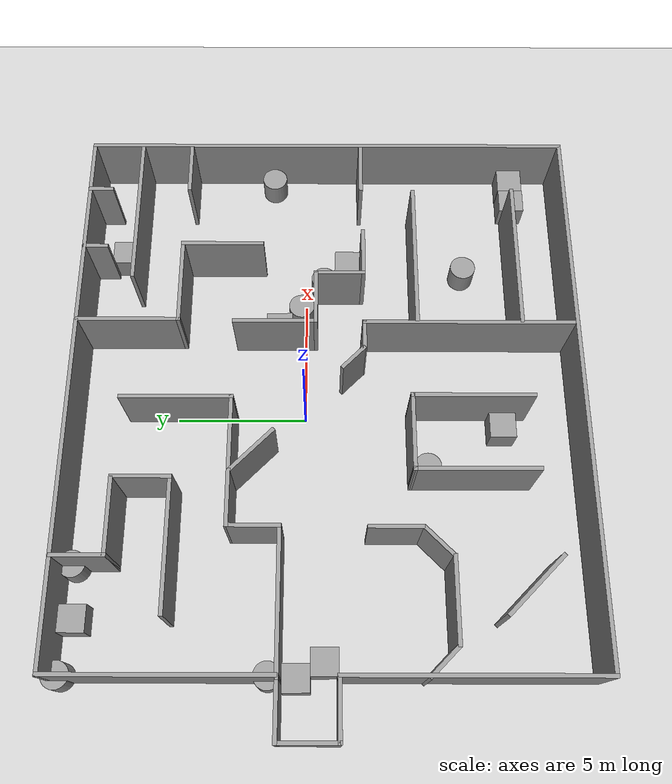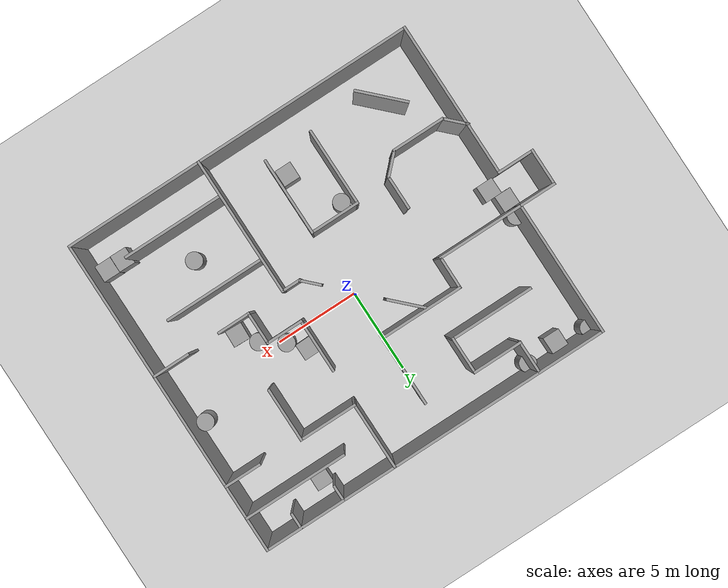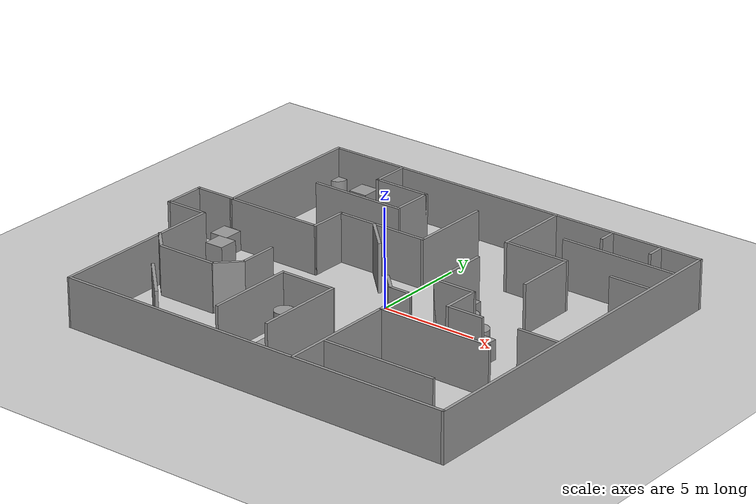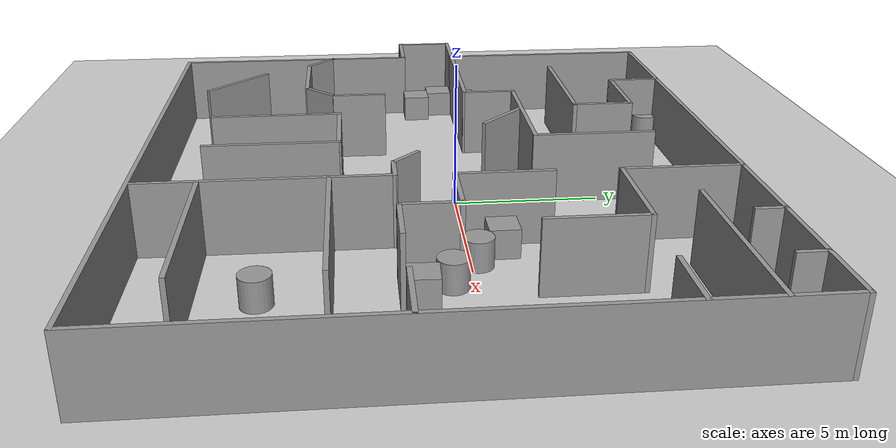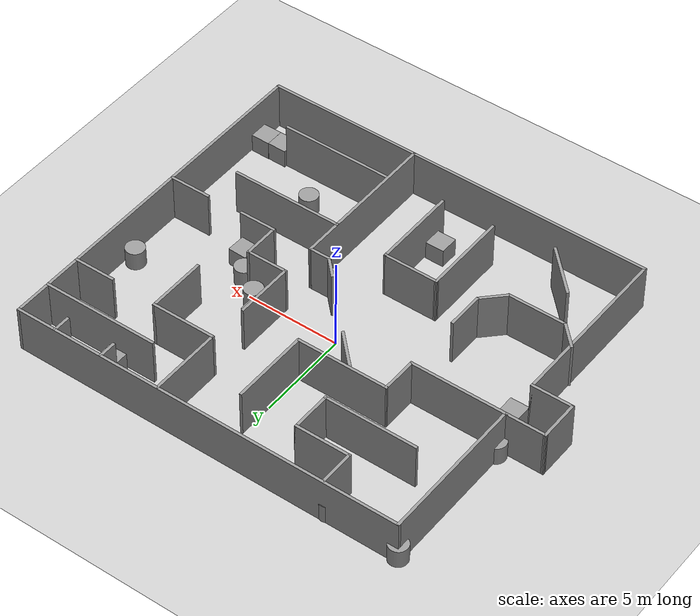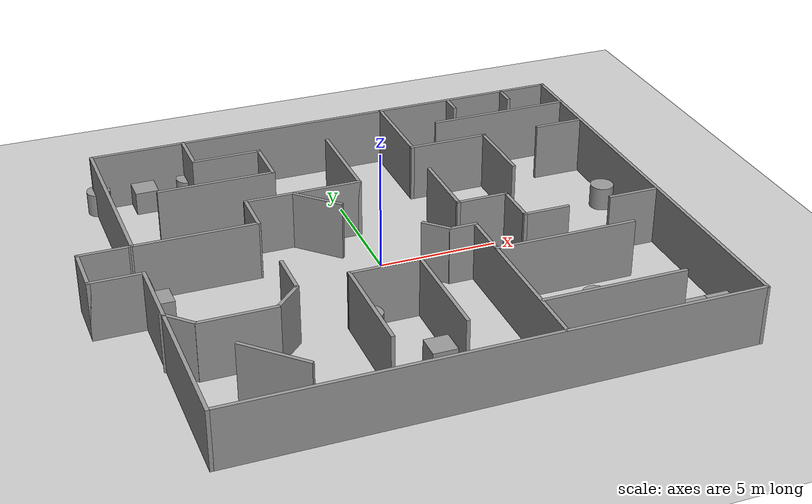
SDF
<sdf version="1.7">
 <world name="default">
  <light name="sun" type="directional">
   <pose>0 0 10 0 -0 0</pose>
   <diffuse>0.8 0.8 0.8 1</diffuse>
   <specular>0.2 0.2 0.2 1</specular>
   <attenuation>
    <range>1000</range>
    <constant>0.9</constant>
    <linear>0.01</linear>
    <quadratic>0.001</quadratic>
   </attenuation>
   <direction>-0.5 0.1 -0.9</direction>
   <spot><inner_angle>0</inner_angle><outer_angle>0</outer_angle><falloff>0</falloff></spot>
  </light>
  <model name="ground_plane">
   <static>1</static>
   <link name="link">
    <collision name="collision">
     <geometry><plane><normal>0 0 1</normal><size>100 100</size></plane></geometry>
     <surface>
      <contact><collide_bitmask>65535</collide_bitmask></contact>
      <friction><ode><mu>100</mu><mu2>50</mu2></ode></friction>
     </surface>
    </collision>
    <visual name="visual">
     <cast_shadows>0</cast_shadows>
     <geometry><plane><normal>0 0 1</normal><size>100 100</size></plane></geometry>
     <material>
      <script><uri>file://media/materials/scripts/gazebo.material</uri><name>Gazebo/Grey</name></script>
     </material>
    </visual>
   </link>
  </model>
  <gravity>0 0 -9.8</gravity>
  <magnetic_field>6e-06 2.3e-05 -4.2e-05</magnetic_field>
  <atmosphere type="adiabatic"/>
  <physics type="ode">
   <max_step_size>0.001</max_step_size>
   <real_time_factor>1</real_time_factor>
   <real_time_update_rate>1000</real_time_update_rate>
  </physics>
  <scene><ambient>0.4 0.4 0.4 1</ambient><background>0.7 0.7 0.7 1</background><shadows>1</shadows></scene>
  <spherical_coordinates>
   <surface_model>EARTH_WGS84</surface_model>
   <latitude_deg>0</latitude_deg>
   <longitude_deg>0</longitude_deg>
   <elevation>0</elevation>
   <heading_deg>0</heading_deg>
  </spherical_coordinates>
  <model name="Maze_2">
   <pose>-0.3438 -0.781152 0 0 -0 0</pose>
   <link name="Wall_1">
    <collision name="Wall_1_Collision">
     <geometry><box><size>2.18537 0.15 2.5</size></box></geometry>
     <pose>0 0 1.25 0 -0 0</pose>
    </collision>
    <visual name="Wall_1_Visual">
     <pose>0 0 1.25 0 -0 0</pose>
     <geometry><box><size>2.18537 0.15 2.5</size></box></geometry>
     <material>
      <script><uri>file://media/materials/scripts/gazebo.material</uri><name>Gazebo/Grey</name></script>
      <ambient>1 1 1 1</ambient>
     </material>
     <meta><layer>0</layer></meta>
    </visual>
    <pose>-10.5822 1.64751 0 0 -0 3.13915</pose>
   </link>
   <link name="Wall_10">
    <collision name="Wall_10_Collision">
     <geometry><box><size>2.25 0.15 2.5</size></box></geometry>
     <pose>1 0 1.25 0 -0 0</pose>
    </collision>
    <visual name="Wall_10_Visual">
     <pose>1 0 1.25 0 -0 0</pose>
     <geometry><box><size>2.25 0.15 2.5</size></box></geometry>
     <material>
      <script><uri>file://media/materials/scripts/gazebo.material</uri><name>Gazebo/Grey</name></script>
      <ambient>1 1 1 1</ambient>
     </material>
     <meta><layer>0</layer></meta>
    </visual>
    <pose>-0.957564 1.99966 0 0 -0 2.35619</pose>
   </link>
   <link name="Wall_12">
    <collision name="Wall_12_Collision">
     <geometry><box><size>5 0.15 2.5</size></box></geometry>
     <pose>0 0 1.25 0 -0 0</pose>
    </collision>
    <visual name="Wall_12_Visual">
     <pose>0 0 1.25 0 -0 0</pose>
     <geometry><box><size>5 0.15 2.5</size></box></geometry>
     <material>
      <script><uri>file://media/materials/scripts/gazebo.material</uri><name>Gazebo/Grey</name></script>
      <ambient>1 1 1 1</ambient>
     </material>
     <meta><layer>0</layer></meta>
    </visual>
    <pose>-2.02915 3.51249 0 0 -0 0</pose>
   </link>
   <link name="Wall_14">
    <collision name="Wall_14_Collision">
     <geometry><box><size>2.01749 0.15 2.5</size></box></geometry>
     <pose>0 0 1.25 0 -0 0</pose>
    </collision>
    <visual name="Wall_14_Visual">
     <pose>0 0 1.25 0 -0 0</pose>
     <geometry><box><size>2.01749 0.15 2.5</size></box></geometry>
     <material>
      <script><uri>file://media/materials/scripts/gazebo.material</uri><name>Gazebo/Grey</name></script>
      <ambient>1 1 1 1</ambient>
     </material>
     <meta><layer>0</layer></meta>
    </visual>
    <pose>-4.45934 2.57876 0 0 -0 -1.57636</pose>
   </link>
   <link name="Wall_18">
    <collision name="Wall_18_Collision">
     <geometry><box><size>5.25 0.15 2.5</size></box></geometry>
     <pose>0 0 1.25 0 -0 0</pose>
    </collision>
    <visual name="Wall_18_Visual">
     <pose>0 0 1.25 0 -0 0</pose>
     <geometry><box><size>5.25 0.15 2.5</size></box></geometry>
     <material>
      <script><uri>file://media/materials/scripts/gazebo.material</uri><name>Gazebo/Grey</name></script>
      <ambient>1 1 1 1</ambient>
     </material>
     <meta><layer>0</layer></meta>
    </visual>
    <pose>-7.01454 1.64503 0 0 -0 3.14159</pose>
   </link>
   <link name="Wall_2">
    <collision name="Wall_2_Collision">
     <geometry><box><size>2.25 0.15 2.5</size></box></geometry>
     <pose>0 0 1.25 0 -0 0</pose>
    </collision>
    <visual name="Wall_2_Visual">
     <pose>0 0 1.25 0 -0 0</pose>
     <geometry><box><size>2.25 0.15 2.5</size></box></geometry>
     <material>
      <script><uri>file://media/materials/scripts/gazebo.material</uri><name>Gazebo/Grey</name></script>
      <ambient>1 1 1 1</ambient>
     </material>
     <meta><layer>0</layer></meta>
    </visual>
    <pose>-11.5999 0.6 0 0 -0 -1.5708</pose>
   </link>
   <link name="Wall_20">
    <collision name="Wall_20_Collision">
     <geometry><box><size>8 0.15 2.5</size></box></geometry>
     <pose>0 0 1.25 0 -0 0</pose>
    </collision>
    <visual name="Wall_20_Visual">
     <pose>0 0 1.25 0 -0 0</pose>
     <geometry><box><size>8 0.15 2.5</size></box></geometry>
     <material>
      <script><uri>file://media/materials/scripts/gazebo.material</uri><name>Gazebo/Grey</name></script>
      <ambient>1 1 1 1</ambient>
     </material>
     <meta><layer>0</layer></meta>
    </visual>
    <pose>-9.49991 5.625 0 0 -0 -1.5708</pose>
   </link>
   <link name="Wall_22">
    <collision name="Wall_22_Collision">
     <geometry><box><size>1.25 0.15 2.5</size></box></geometry>
     <pose>0 0 1.25 0 -0 0</pose>
    </collision>
    <visual name="Wall_22_Visual">
     <pose>0 0 1.25 0 -0 0</pose>
     <geometry><box><size>1.25 0.15 2.5</size></box></geometry>
     <material>
      <script><uri>file://media/materials/scripts/gazebo.material</uri><name>Gazebo/Grey</name></script>
      <ambient>1 1 1 1</ambient>
     </material>
     <meta><layer>0</layer></meta>
    </visual>
    <pose>1.99675 -1.01284 0 0 -0 -0.785398</pose>
   </link>
   <link name="Wall_24">
    <collision name="Wall_24_Collision">
     <geometry><box><size>1.19529 0.15 2.5</size></box></geometry>
     <pose>0 0 1.25 0 -0 0</pose>
    </collision>
    <visual name="Wall_24_Visual">
     <pose>0 0 1.25 0 -0 0</pose>
     <geometry><box><size>1.19529 0.15 2.5</size></box></geometry>
     <material>
      <script><uri>file://media/materials/scripts/gazebo.material</uri><name>Gazebo/Grey</name></script>
      <ambient>1 1 1 1</ambient>
     </material>
     <meta><layer>0</layer></meta>
    </visual>
    <pose>2.94977 -1.43978 0 0 -0 -3.13794</pose>
   </link>
   <link name="Wall_26">
    <collision name="Wall_26_Collision">
     <geometry><box><size>8.25 0.15 2.5</size></box></geometry>
     <pose>0 0 1.25 0 -0 0</pose>
    </collision>
    <visual name="Wall_26_Visual">
     <pose>0 0 1.25 0 -0 0</pose>
     <geometry><box><size>8.25 0.15 2.5</size></box></geometry>
     <material>
      <script><uri>file://media/materials/scripts/gazebo.material</uri><name>Gazebo/Grey</name></script>
      <ambient>1 1 1 1</ambient>
     </material>
     <meta><layer>0</layer></meta>
    </visual>
    <pose>3.47228 -5.48787 0 0 -0 -1.5708</pose>
   </link>
   <link name="Wall_28">
    <collision name="Wall_28_Collision">
     <geometry><box><size>6 0.15 2.5</size></box></geometry>
     <pose>0 0 1.25 0 -0 0</pose>
    </collision>
    <visual name="Wall_28_Visual">
     <pose>0 0 1.25 0 -0 0</pose>
     <geometry><box><size>6 0.15 2.5</size></box></geometry>
     <material>
      <script><uri>file://media/materials/scripts/gazebo.material</uri><name>Gazebo/Grey</name></script>
      <ambient>1 1 1 1</ambient>
     </material>
     <meta><layer>0</layer></meta>
    </visual>
    <pose>6.42548 -3.4608 0 0 -0 0</pose>
   </link>
   <link name="Wall_3">
    <collision name="Wall_3_Collision">
     <geometry><box><size>2.25 0.15 2.5</size></box></geometry>
     <pose>0 0 1.25 0 -0 0</pose>
    </collision>
    <visual name="Wall_3_Visual">
     <pose>0 0 1.25 0 -0 0</pose>
     <geometry><box><size>2.25 0.15 2.5</size></box></geometry>
     <material>
      <script><uri>file://media/materials/scripts/gazebo.material</uri><name>Gazebo/Grey</name></script>
      <ambient>1 1 1 1</ambient>
     </material>
     <meta><layer>0</layer></meta>
    </visual>
    <pose>-10.5499 -0.45 0 0 -0 0</pose>
   </link>
   <link name="Wall_30">
    <collision name="Wall_30_Collision">
     <geometry><box><size>6 0.15 2.5</size></box></geometry>
     <pose>0 0 1.25 0 -0 0</pose>
    </collision>
    <visual name="Wall_30_Visual">
     <pose>0 0 1.25 0 -0 0</pose>
     <geometry><box><size>6 0.15 2.5</size></box></geometry>
     <material>
      <script><uri>file://media/materials/scripts/gazebo.material</uri><name>Gazebo/Grey</name></script>
      <ambient>1 1 1 1</ambient>
     </material>
     <meta><layer>0</layer></meta>
    </visual>
    <pose>6.47548 -7.4508 0 0 -0 0</pose>
   </link>
   <link name="Wall_32">
    <collision name="Wall_32_Collision">
     <geometry><box><size>4.64174 0.15 2.5</size></box></geometry>
     <pose>0 0 1.25 0 -0 0</pose>
    </collision>
    <visual name="Wall_32_Visual">
     <pose>0 0 1.25 0 -0 0</pose>
     <geometry><box><size>4.64174 0.15 2.5</size></box></geometry>
     <material>
      <script><uri>file://media/materials/scripts/gazebo.material</uri><name>Gazebo/Grey</name></script>
      <ambient>1 1 1 1</ambient>
     </material>
     <meta><layer>0</layer></meta>
    </visual>
    <pose>0.48137 -5.42485 0 0 -0 -1.56974</pose>
   </link>
   <link name="Wall_34">
    <collision name="Wall_34_Collision">
     <geometry><box><size>3 0.15 2.5</size></box></geometry>
     <pose>0 0 1.25 0 -0 0</pose>
    </collision>
    <visual name="Wall_34_Visual">
     <pose>0 0 1.25 0 -0 0</pose>
     <geometry><box><size>3 0.15 2.5</size></box></geometry>
     <material>
      <script><uri>file://media/materials/scripts/gazebo.material</uri><name>Gazebo/Grey</name></script>
      <ambient>1 1 1 1</ambient>
     </material>
     <meta><layer>0</layer></meta>
    </visual>
    <pose>-0.946011 -3.17898 0 0 -0 3.14159</pose>
   </link>
   <link name="Wall_36">
    <collision name="Wall_36_Collision">
     <geometry><box><size>4.64174 0.15 2.5</size></box></geometry>
     <pose>0 0 1.25 0 -0 0</pose>
    </collision>
    <visual name="Wall_36_Visual">
     <pose>0 0 1.25 0 -0 0</pose>
     <geometry><box><size>4.64174 0.15 2.5</size></box></geometry>
     <material>
      <script><uri>file://media/materials/scripts/gazebo.material</uri><name>Gazebo/Grey</name></script>
      <ambient>1 1 1 1</ambient>
     </material>
     <meta><layer>0</layer></meta>
    </visual>
    <pose>-2.36863 -5.42485 0 0 -0 -1.56974</pose>
   </link>
   <link name="Wall_38">
    <collision name="Wall_38_Collision">
     <geometry><box><size>4.25 0.15 2.5</size></box></geometry>
     <pose>0 0 1.25 0 -0 0</pose>
    </collision>
    <visual name="Wall_38_Visual">
     <pose>0 0 1.25 0 -0 0</pose>
     <geometry><box><size>4.25 0.15 2.5</size></box></geometry>
     <material>
      <script><uri>file://media/materials/scripts/gazebo.material</uri><name>Gazebo/Grey</name></script>
      <ambient>1 1 1 1</ambient>
     </material>
     <meta><layer>0</layer></meta>
    </visual>
    <pose>0.395855 5.56249 0 0 -0 1.5708</pose>
   </link>
   <link name="Wall_4">
    <collision name="Wall_4_Collision">
     <geometry><box><size>9.25 0.15 2.5</size></box></geometry>
     <pose>0 0 1.25 0 -0 0</pose>
    </collision>
    <visual name="Wall_4_Visual">
     <pose>0 0 1.25 0 -0 0</pose>
     <geometry><box><size>9.25 0.15 2.5</size></box></geometry>
     <material>
      <script><uri>file://media/materials/scripts/gazebo.material</uri><name>Gazebo/Grey</name></script>
      <ambient>1 1 1 1</ambient>
     </material>
     <meta><layer>0</layer></meta>
    </visual>
    <pose>-9.49991 -5 0 0 -0 -1.5708</pose>
   </link>
   <link name="Wall_43">
    <collision name="Wall_43_Collision">
     <geometry><box><size>1.5 0.15 2.5</size></box></geometry>
     <pose>0 0 1.25 0 -0 0</pose>
    </collision>
    <visual name="Wall_43_Visual">
     <pose>0 0 1.25 0 -0 0</pose>
     <geometry><box><size>1.5 0.15 2.5</size></box></geometry>
     <material>
      <script><uri>file://media/materials/scripts/gazebo.material</uri><name>Gazebo/Grey</name></script>
      <ambient>1 1 1 1</ambient>
     </material>
     <meta><layer>0</layer></meta>
    </visual>
    <pose>-4.98733 -3.9113 0 0 -0 0.785398</pose>
   </link>
   <link name="Wall_45">
    <collision name="Wall_45_Collision">
     <geometry><box><size>3.15541 0.15 2.5</size></box></geometry>
     <pose>0 0 1.25 0 -0 0</pose>
    </collision>
    <visual name="Wall_45_Visual">
     <pose>0 0 1.25 0 -0 0</pose>
     <geometry><box><size>3.15541 0.15 2.5</size></box></geometry>
     <material>
      <script><uri>file://media/materials/scripts/gazebo.material</uri><name>Gazebo/Grey</name></script>
      <ambient>1 1 1 1</ambient>
     </material>
     <meta><layer>0</layer></meta>
    </visual>
    <pose>-7.02192 -4.4463 0 0 -0 -3.14006</pose>
   </link>
   <link name="Wall_47">
    <collision name="Wall_47_Collision">
     <geometry><box><size>1.5 0.15 2.5</size></box></geometry>
     <pose>0 0 1.25 0 -0 0</pose>
    </collision>
    <visual name="Wall_47_Visual">
     <pose>0 0 1.25 0 -0 0</pose>
     <geometry><box><size>1.5 0.15 2.5</size></box></geometry>
     <material>
      <script><uri>file://media/materials/scripts/gazebo.material</uri><name>Gazebo/Grey</name></script>
      <ambient>1 1 1 1</ambient>
     </material>
     <meta><layer>0</layer></meta>
    </visual>
    <pose>-9.0687 -3.93452 0 0 -0 -0.785398</pose>
   </link>
   <link name="Wall_49">
    <collision name="Wall_49_Collision">
     <geometry><box><size>2 0.15 2.5</size></box></geometry>
     <pose>0 0 1.25 0 -0 0</pose>
    </collision>
    <visual name="Wall_49_Visual">
     <pose>0 0 1.25 0 -0 0</pose>
     <geometry><box><size>2 0.15 2.5</size></box></geometry>
     <material>
      <script><uri>file://media/materials/scripts/gazebo.material</uri><name>Gazebo/Grey</name></script>
      <ambient>1 1 1 1</ambient>
     </material>
     <meta><layer>0</layer></meta>
    </visual>
    <pose>-4.48721 -2.43429 0 0 -0 -1.5708</pose>
   </link>
   <link name="Wall_5">
    <collision name="Wall_5_Collision">
     <geometry><box><size>21.25 0.15 2.5</size></box></geometry>
     <pose>0 0 1.25 0 -0 0</pose>
    </collision>
    <visual name="Wall_5_Visual">
     <pose>0 0 1.25 0 -0 0</pose>
     <geometry><box><size>21.25 0.15 2.5</size></box></geometry>
     <material>
      <script><uri>file://media/materials/scripts/gazebo.material</uri><name>Gazebo/Grey</name></script>
      <ambient>1 1 1 1</ambient>
     </material>
     <meta><layer>0</layer></meta>
    </visual>
    <pose>1.05009 -9.55 0 0 -0 0</pose>
   </link>
   <link name="Wall_51">
    <collision name="Wall_51_Collision">
     <geometry><box><size>2.25 0.15 2.5</size></box></geometry>
     <pose>0 0 1.25 0 -0 0</pose>
    </collision>
    <visual name="Wall_51_Visual">
     <pose>0 0 1.25 0 -0 0</pose>
     <geometry><box><size>2.25 0.15 2.5</size></box></geometry>
     <material>
      <script><uri>file://media/materials/scripts/gazebo.material</uri><name>Gazebo/Grey</name></script>
      <ambient>1 1 1 1</ambient>
     </material>
     <meta><layer>0</layer></meta>
    </visual>
    <pose>10.5314 -1.37081 0 0 -0 3.14159</pose>
   </link>
   <link name="Wall_53">
    <collision name="Wall_53_Collision">
     <geometry><box><size>2 0.15 2.5</size></box></geometry>
     <pose>0 0 1.25 0 -0 0</pose>
    </collision>
    <visual name="Wall_53_Visual">
     <pose>0 0 1.25 0 -0 0</pose>
     <geometry><box><size>2 0.15 2.5</size></box></geometry>
     <material>
      <script><uri>file://media/materials/scripts/gazebo.material</uri><name>Gazebo/Grey</name></script>
      <ambient>1 1 1 1</ambient>
     </material>
     <meta><layer>0</layer></meta>
    </visual>
    <pose>6.55008 -1.43164 0 0 -0 3.14159</pose>
   </link>
   <link name="Wall_54">
    <collision name="Wall_54_Collision">
     <geometry><box><size>2 0.15 2.5</size></box></geometry>
     <pose>0 0 1.25 0 -0 0</pose>
    </collision>
    <visual name="Wall_54_Visual">
     <pose>0 0 1.25 0 -0 0</pose>
     <geometry><box><size>2 0.15 2.5</size></box></geometry>
     <material>
      <script><uri>file://media/materials/scripts/gazebo.material</uri><name>Gazebo/Grey</name></script>
      <ambient>1 1 1 1</ambient>
     </material>
     <meta><layer>0</layer></meta>
    </visual>
    <pose>5.62508 -0.506641 0 0 -0 1.5708</pose>
   </link>
   <link name="Wall_56">
    <collision name="Wall_56_Collision">
     <geometry><box><size>2.25 0.15 2.5</size></box></geometry>
     <pose>0 0 1.25 0 -0 0</pose>
    </collision>
    <visual name="Wall_56_Visual">
     <pose>0 0 1.25 0 -0 0</pose>
     <geometry><box><size>2.25 0.15 2.5</size></box></geometry>
     <material>
      <script><uri>file://media/materials/scripts/gazebo.material</uri><name>Gazebo/Grey</name></script>
      <ambient>1 1 1 1</ambient>
     </material>
     <meta><layer>0</layer></meta>
    </visual>
    <pose>4.57508 0.418359 0 0 -0 3.14159</pose>
   </link>
   <link name="Wall_58">
    <collision name="Wall_58_Collision">
     <geometry><box><size>3.25 0.15 2.5</size></box></geometry>
     <pose>0 0 1.25 0 -0 0</pose>
    </collision>
    <visual name="Wall_58_Visual">
     <pose>0 0 1.25 0 -0 0</pose>
     <geometry><box><size>3.25 0.15 2.5</size></box></geometry>
     <material>
      <script><uri>file://media/materials/scripts/gazebo.material</uri><name>Gazebo/Grey</name></script>
      <ambient>1 1 1 1</ambient>
     </material>
     <meta><layer>0</layer></meta>
    </visual>
    <pose>3.52508 1.96836 0 0 -0 1.5708</pose>
   </link>
   <link name="Wall_60">
    <collision name="Wall_60_Collision">
     <geometry><box><size>3.25 0.15 2.5</size></box></geometry>
     <pose>0 0 1.25 0 -0 0</pose>
    </collision>
    <visual name="Wall_60_Visual">
     <pose>0 0 1.25 0 -0 0</pose>
     <geometry><box><size>3.25 0.15 2.5</size></box></geometry>
     <material>
      <script><uri>file://media/materials/scripts/gazebo.material</uri><name>Gazebo/Grey</name></script>
      <ambient>1 1 1 1</ambient>
     </material>
     <meta><layer>0</layer></meta>
    </visual>
    <pose>6.92938 4.10641 0 0 -0 1.5708</pose>
   </link>
   <link name="Wall_61">
    <collision name="Wall_61_Collision">
     <geometry><box><size>3.5 0.15 2.5</size></box></geometry>
     <pose>0 0 1.25 0 -0 0</pose>
    </collision>
    <visual name="Wall_61_Visual">
     <pose>0 0 1.25 0 -0 0</pose>
     <geometry><box><size>3.5 0.15 2.5</size></box></geometry>
     <material>
      <script><uri>file://media/materials/scripts/gazebo.material</uri><name>Gazebo/Grey</name></script>
      <ambient>1 1 1 1</ambient>
     </material>
     <meta><layer>0</layer></meta>
    </visual>
    <pose>5.25438 5.65641 0 0 -0 3.14159</pose>
   </link>
   <link name="Wall_62">
    <collision name="Wall_62_Collision">
     <geometry><box><size>4 0.15 2.5</size></box></geometry>
     <pose>0 0 1.25 0 -0 0</pose>
    </collision>
    <visual name="Wall_62_Visual">
     <pose>0 0 1.25 0 -0 0</pose>
     <geometry><box><size>4 0.15 2.5</size></box></geometry>
     <material>
      <script><uri>file://media/materials/scripts/gazebo.material</uri><name>Gazebo/Grey</name></script>
      <ambient>1 1 1 1</ambient>
     </material>
     <meta><layer>0</layer></meta>
    </visual>
    <pose>3.57938 7.58141 0 0 -0 1.5708</pose>
   </link>
   <link name="Wall_64">
    <collision name="Wall_64_Collision">
     <geometry><box><size>2.25 0.15 2.5</size></box></geometry>
     <pose>0 0 1.25 0 -0 0</pose>
    </collision>
    <visual name="Wall_64_Visual">
     <pose>0 0 1.25 0 -0 0</pose>
     <geometry><box><size>2.25 0.15 2.5</size></box></geometry>
     <material>
      <script><uri>file://media/materials/scripts/gazebo.material</uri><name>Gazebo/Grey</name></script>
      <ambient>1 1 1 1</ambient>
     </material>
     <meta><layer>0</layer></meta>
    </visual>
    <pose>10.5479 5.54788 0 0 -0 3.14159</pose>
   </link>
   <link name="Wall_66">
    <collision name="Wall_66_Collision">
     <geometry><box><size>6.25 0.15 2.5</size></box></geometry>
     <pose>0 0 1.25 0 -0 0</pose>
    </collision>
    <visual name="Wall_66_Visual">
     <pose>0 0 1.25 0 -0 0</pose>
     <geometry><box><size>6.25 0.15 2.5</size></box></geometry>
     <material>
      <script><uri>file://media/materials/scripts/gazebo.material</uri><name>Gazebo/Grey</name></script>
      <ambient>1 1 1 1</ambient>
     </material>
     <meta><layer>0</layer></meta>
    </visual>
    <pose>8.54789 7.5544 0 0 -0 3.14159</pose>
   </link>
   <link name="Wall_68">
    <collision name="Wall_68_Collision">
     <geometry><box><size>1 0.15 2.5</size></box></geometry>
     <pose>0 0 1.25 0 -0 0</pose>
    </collision>
    <visual name="Wall_68_Visual">
     <pose>0 0 1.25 0 -0 0</pose>
     <geometry><box><size>1 0.15 2.5</size></box></geometry>
     <material>
      <script><uri>file://media/materials/scripts/gazebo.material</uri><name>Gazebo/Grey</name></script>
      <ambient>1 1 1 1</ambient>
     </material>
     <meta><layer>0</layer></meta>
    </visual>
    <pose>6.80789 9.1094 0 0 -0 -1.5708</pose>
   </link>
   <link name="Wall_7">
    <collision name="Wall_7_Collision">
     <geometry><box><size>19.25 0.15 2.5</size></box></geometry>
     <pose>0 0 1.25 0 -0 0</pose>
    </collision>
    <visual name="Wall_7_Visual">
     <pose>0 0 1.25 0 -0 0</pose>
     <geometry><box><size>19.25 0.15 2.5</size></box></geometry>
     <material>
      <script><uri>file://media/materials/scripts/gazebo.material</uri><name>Gazebo/Grey</name></script>
      <ambient>1 1 1 1</ambient>
     </material>
     <meta><layer>0</layer></meta>
    </visual>
    <pose>11.6001 0 0 0 -0 1.5708</pose>
   </link>
   <link name="Wall_70">
    <collision name="Wall_70_Collision">
     <geometry><box><size>1 0.15 2.5</size></box></geometry>
     <pose>0 0 1.25 0 -0 0</pose>
    </collision>
    <visual name="Wall_70_Visual">
     <pose>0 0 1.25 0 -0 0</pose>
     <geometry><box><size>1 0.15 2.5</size></box></geometry>
     <material>
      <script><uri>file://media/materials/scripts/gazebo.material</uri><name>Gazebo/Grey</name></script>
      <ambient>1 1 1 1</ambient>
     </material>
     <meta><layer>0</layer></meta>
    </visual>
    <pose>9.47789 9.1194 0 0 -0 -1.5708</pose>
   </link>
   <link name="Wall_72">
    <collision name="Wall_72_Collision">
     <geometry><box><size>3 0.15 2.5</size></box></geometry>
     <pose>0 0 1.25 0 -0 0</pose>
    </collision>
    <visual name="Wall_72_Visual">
     <pose>0 0 1.25 0 -0 0</pose>
     <geometry><box><size>3 0.15 2.5</size></box></geometry>
     <material>
      <script><uri>file://media/materials/scripts/gazebo.material</uri><name>Gazebo/Grey</name></script>
      <ambient>1 1 1 1</ambient>
     </material>
     <meta><layer>0</layer></meta>
    </visual>
    <pose>-6.50601 -7.19418 0 0 -0 -0.785398</pose>
   </link>
   <link name="Wall_74">
    <collision name="Wall_74_Collision">
     <geometry><box><size>2 0.15 2.5</size></box></geometry>
     <pose>0 0 1.25 0 -0 0</pose>
    </collision>
    <visual name="Wall_74_Visual">
     <pose>0 0 1.25 0 -0 0</pose>
     <geometry><box><size>2 0.15 2.5</size></box></geometry>
     <material>
      <script><uri>file://media/materials/scripts/gazebo.material</uri><name>Gazebo/Grey</name></script>
      <ambient>1 1 1 1</ambient>
     </material>
     <meta><layer>0</layer></meta>
    </visual>
    <pose>-5.52961 8.60068 0 0 -0 -1.5708</pose>
   </link>
   <link name="Wall_75">
    <collision name="Wall_75_Collision">
     <geometry><box><size>3 0.15 2.5</size></box></geometry>
     <pose>0 0 1.25 0 -0 0</pose>
    </collision>
    <visual name="Wall_75_Visual">
     <pose>0 0 1.25 0 -0 0</pose>
     <geometry><box><size>3 0.15 2.5</size></box></geometry>
     <material>
      <script><uri>file://media/materials/scripts/gazebo.material</uri><name>Gazebo/Grey</name></script>
      <ambient>1 1 1 1</ambient>
     </material>
     <meta><layer>0</layer></meta>
    </visual>
    <pose>-4.10461 7.67568 0 0 -0 0</pose>
   </link>
   <link name="Wall_76">
    <collision name="Wall_76_Collision">
     <geometry><box><size>2.25 0.15 2.5</size></box></geometry>
     <pose>0 0 1.25 0 -0 0</pose>
    </collision>
    <visual name="Wall_76_Visual">
     <pose>0 0 1.25 0 -0 0</pose>
     <geometry><box><size>2.25 0.15 2.5</size></box></geometry>
     <material>
      <script><uri>file://media/materials/scripts/gazebo.material</uri><name>Gazebo/Grey</name></script>
      <ambient>1 1 1 1</ambient>
     </material>
     <meta><layer>0</layer></meta>
    </visual>
    <pose>-2.67961 6.62568 0 0 -0 -1.5708</pose>
   </link>
   <link name="Wall_77">
    <collision name="Wall_77_Collision">
     <geometry><box><size>5 0.15 2.5</size></box></geometry>
     <pose>0 0 1.25 0 -0 0</pose>
    </collision>
    <visual name="Wall_77_Visual">
     <pose>0 0 1.25 0 -0 0</pose>
     <geometry><box><size>5 0.15 2.5</size></box></geometry>
     <material>
      <script><uri>file://media/materials/scripts/gazebo.material</uri><name>Gazebo/Grey</name></script>
      <ambient>1 1 1 1</ambient>
     </material>
     <meta><layer>0</layer></meta>
    </visual>
    <pose>-5.10461 5.57568 0 0 -0 3.14159</pose>
   </link>
   <link name="Wall_8">
    <collision name="Wall_8_Collision">
     <geometry><box><size>21.25 0.15 2.5</size></box></geometry>
     <pose>0 0 1.25 0 -0 0</pose>
    </collision>
    <visual name="Wall_8_Visual">
     <pose>0 0 1.25 0 -0 0</pose>
     <geometry><box><size>21.25 0.15 2.5</size></box></geometry>
     <material>
      <script><uri>file://media/materials/scripts/gazebo.material</uri><name>Gazebo/Grey</name></script>
      <ambient>1 1 1 1</ambient>
     </material>
     <meta><layer>0</layer></meta>
    </visual>
    <pose>1.05009 9.55 0 0 -0 3.14159</pose>
   </link>
   <static>1</static>
  </model>
  <model name="unit_box">
   <pose>9.62913 -8.52703 0.499995 1e-05 0 -0.011795</pose>
   <link name="link">
    <inertial>
     <mass>1</mass>
     <inertia>
      <ixx>0.166667</ixx>
      <ixy>0</ixy>
      <ixz>0</ixz>
      <iyy>0.166667</iyy>
      <iyz>0</iyz>
      <izz>0.166667</izz>
     </inertia>
    </inertial>
    <collision name="collision"><geometry><box><size>1 1 1</size></box></geometry></collision>
    <visual name="visual">
     <geometry><box><size>1 1 1</size></box></geometry>
     <material>
      <script><name>Gazebo/Grey</name><uri>file://media/materials/scripts/gazebo.material</uri></script>
     </material>
    </visual>
   </link>
  </model>
  <model name="unit_box_0">
   <pose>10.6325 -8.52079 0.499995 1e-05 -0 -0.005156</pose>
   <link name="link">
    <inertial>
     <mass>1</mass>
     <inertia>
      <ixx>0.166667</ixx>
      <ixy>0</ixy>
      <ixz>0</ixz>
      <iyy>0.166667</iyy>
      <iyz>0</iyz>
      <izz>0.166667</izz>
     </inertia>
    </inertial>
    <collision name="collision"><geometry><box><size>1 1 1</size></box></geometry></collision>
    <visual name="visual">
     <geometry><box><size>1 1 1</size></box></geometry>
     <material>
      <script><name>Gazebo/Grey</name><uri>file://media/materials/scripts/gazebo.material</uri></script>
     </material>
    </visual>
   </link>
  </model>
  <model name="unit_box_1">
   <pose>-9.8116 0.260681 0.499995 0 1e-05 0.007345</pose>
   <link name="link">
    <inertial>
     <mass>1</mass>
     <inertia>
      <ixx>0.166667</ixx>
      <ixy>0</ixy>
      <ixz>0</ixz>
      <iyy>0.166667</iyy>
      <iyz>0</iyz>
      <izz>0.166667</izz>
     </inertia>
    </inertial>
    <collision name="collision"><geometry><box><size>1 1 1</size></box></geometry></collision>
    <visual name="visual">
     <geometry><box><size>1 1 1</size></box></geometry>
     <material>
      <script><name>Gazebo/Grey</name><uri>file://media/materials/scripts/gazebo.material</uri></script>
     </material>
    </visual>
   </link>
  </model>
  <model name="unit_box_3">
   <pose>-9.26525 -0.735344 0.499995 0 1e-05 0.007339</pose>
   <link name="link">
    <inertial>
     <mass>1</mass>
     <inertia>
      <ixx>0.166667</ixx>
      <ixy>0</ixy>
      <ixz>0</ixz>
      <iyy>0.166667</iyy>
      <iyz>0</iyz>
      <izz>0.166667</izz>
     </inertia>
    </inertial>
    <collision name="collision"><geometry><box><size>1 1 1</size></box></geometry></collision>
    <visual name="visual">
     <geometry><box><size>1 1 1</size></box></geometry>
     <material>
      <script><name>Gazebo/Grey</name><uri>file://media/materials/scripts/gazebo.material</uri></script>
     </material>
    </visual>
   </link>
  </model>
  <model name="unit_box_2">
   <pose>7.06989 7.47105 0.499995 1e-05 -0 0</pose>
   <link name="link">
    <inertial>
     <mass>1</mass>
     <inertia>
      <ixx>0.166667</ixx>
      <ixy>0</ixy>
      <ixz>0</ixz>
      <iyy>0.166667</iyy>
      <iyz>0</iyz>
      <izz>0.166667</izz>
     </inertia>
    </inertial>
    <collision name="collision"><geometry><box><size>1 1 1</size></box></geometry></collision>
    <visual name="visual">
     <geometry><box><size>1 1 1</size></box></geometry>
     <material>
      <script><name>Gazebo/Grey</name><uri>file://media/materials/scripts/gazebo.material</uri></script>
     </material>
    </visual>
   </link>
  </model>
  <model name="unit_cylinder">
   <pose>-5.86626 8.38194 0.499992 -3e-06 2e-06 0</pose>
   <link name="link">
    <inertial>
     <mass>1</mass>
     <inertia><ixx>0.145833</ixx><ixy>0</ixy><ixz>0</ixz><iyy>0.145833</iyy><iyz>0</iyz><izz>0.125</izz></inertia>
    </inertial>
    <collision name="collision">
     <geometry><cylinder><radius>0.5</radius><length>1</length></cylinder></geometry>
    </collision>
    <visual name="visual">
     <geometry><cylinder><radius>0.5</radius><length>1</length></cylinder></geometry>
     <material>
      <script><name>Gazebo/Grey</name><uri>file://media/materials/scripts/gazebo.material</uri></script>
     </material>
    </visual>
   </link>
  </model>
  <model name="unit_cylinder_0">
   <pose>-9.72942 8.57577 0.499998 3e-06 -2e-06 0</pose>
   <link name="link">
    <inertial>
     <mass>1</mass>
     <inertia><ixx>0.145833</ixx><ixy>0</ixy><ixz>0</ixz><iyy>0.145833</iyy><iyz>0</iyz><izz>0.125</izz></inertia>
    </inertial>
    <collision name="collision">
     <geometry><cylinder><radius>0.5</radius><length>1</length></cylinder></geometry>
    </collision>
    <visual name="visual">
     <geometry><cylinder><radius>0.5</radius><length>1</length></cylinder></geometry>
     <material>
      <script><name>Gazebo/Grey</name><uri>file://media/materials/scripts/gazebo.material</uri></script>
     </material>
    </visual>
   </link>
  </model>
  <model name="unit_cylinder_1">
   <pose>-9.73331 1.26131 0.499991 -0 -0 -0.011762</pose>
   <link name="link">
    <inertial>
     <mass>1</mass>
     <inertia><ixx>0.145833</ixx><ixy>0</ixy><ixz>0</ixz><iyy>0.145833</iyy><iyz>0</iyz><izz>0.125</izz></inertia>
    </inertial>
    <collision name="collision">
     <geometry><cylinder><radius>0.5</radius><length>1</length></cylinder></geometry>
    </collision>
    <visual name="visual">
     <geometry><cylinder><radius>0.5</radius><length>1</length></cylinder></geometry>
     <material>
      <script><name>Gazebo/Grey</name><uri>file://media/materials/scripts/gazebo.material</uri></script>
     </material>
    </visual>
   </link>
  </model>
  <model name="unit_box_4">
   <pose>-7.80135 8.19387 0.5 -1e-06 0 -3e-06</pose>
   <link name="link">
    <inertial>
     <mass>1</mass>
     <inertia>
      <ixx>0.166667</ixx>
      <ixy>0</ixy>
      <ixz>0</ixz>
      <iyy>0.166667</iyy>
      <iyz>0</iyz>
      <izz>0.166667</izz>
     </inertia>
    </inertial>
    <collision name="collision"><geometry><box><size>1 1 1</size></box></geometry></collision>
    <visual name="visual">
     <geometry><box><size>1 1 1</size></box></geometry>
     <material>
      <script><name>Gazebo/Grey</name><uri>file://media/materials/scripts/gazebo.material</uri></script>
     </material>
    </visual>
   </link>
  </model>
  <model name="unit_cylinder_2">
   <pose>6.3772 -6.33195 0.499998 3e-06 -3e-06 0</pose>
   <link name="link">
    <inertial>
     <mass>1</mass>
     <inertia><ixx>0.145833</ixx><ixy>0</ixy><ixz>0</ixz><iyy>0.145833</iyy><iyz>0</iyz><izz>0.125</izz></inertia>
    </inertial>
    <collision name="collision">
     <geometry><cylinder><radius>0.5</radius><length>1</length></cylinder></geometry>
    </collision>
    <visual name="visual">
     <geometry><cylinder><radius>0.5</radius><length>1</length></cylinder></geometry>
     <material>
      <script><name>Gazebo/Grey</name><uri>file://media/materials/scripts/gazebo.material</uri></script>
     </material>
    </visual>
   </link>
  </model>
  <model name="unit_cylinder_3">
   <pose>10.6813 1.4108 0.499998 3e-06 4e-06 -0</pose>
   <link name="link">
    <inertial>
     <mass>1</mass>
     <inertia><ixx>0.145833</ixx><ixy>0</ixy><ixz>0</ixz><iyy>0.145833</iyy><iyz>0</iyz><izz>0.125</izz></inertia>
    </inertial>
    <collision name="collision">
     <geometry><cylinder><radius>0.5</radius><length>1</length></cylinder></geometry>
    </collision>
    <visual name="visual">
     <geometry><cylinder><radius>0.5</radius><length>1</length></cylinder></geometry>
     <material>
      <script><name>Gazebo/Grey</name><uri>file://media/materials/scripts/gazebo.material</uri></script>
     </material>
    </visual>
   </link>
  </model>
  <model name="unit_cylinder_4">
   <pose>-2.12917 -4.60174 0.499992 -3e-06 4e-06 0</pose>
   <link name="link">
    <inertial>
     <mass>1</mass>
     <inertia><ixx>0.145833</ixx><ixy>0</ixy><ixz>0</ixz><iyy>0.145833</iyy><iyz>0</iyz><izz>0.125</izz></inertia>
    </inertial>
    <collision name="collision">
     <geometry><cylinder><radius>0.5</radius><length>1</length></cylinder></geometry>
    </collision>
    <visual name="visual">
     <geometry><cylinder><radius>0.5</radius><length>1</length></cylinder></geometry>
     <material>
      <script><name>Gazebo/Grey</name><uri>file://media/materials/scripts/gazebo.material</uri></script>
     </material>
    </visual>
   </link>
  </model>
  <model name="unit_box_5">
   <pose>-0.486433 -7.50288 0.499995 -1e-05 -0 -0</pose>
   <link name="link">
    <inertial>
     <mass>1</mass>
     <inertia>
      <ixx>0.166667</ixx>
      <ixy>0</ixy>
      <ixz>0</ixz>
      <iyy>0.166667</iyy>
      <iyz>0</iyz>
      <izz>0.166667</izz>
     </inertia>
    </inertial>
    <collision name="collision"><geometry><box><size>1 1 1</size></box></geometry></collision>
    <visual name="visual">
     <geometry><box><size>1 1 1</size></box></geometry>
     <material>
      <script><name>Gazebo/Grey</name><uri>file://media/materials/scripts/gazebo.material</uri></script>
     </material>
    </visual>
   </link>
  </model>
  <model name="unit_box_6">
   <pose>3.76428 1.08174 0.499995 -1e-05 -0 0.016035</pose>
   <link name="link">
    <inertial>
     <mass>1</mass>
     <inertia>
      <ixx>0.166667</ixx>
      <ixy>0</ixy>
      <ixz>0</ixz>
      <iyy>0.166667</iyy>
      <iyz>0</iyz>
      <izz>0.166667</izz>
     </inertia>
    </inertial>
    <collision name="collision"><geometry><box><size>1 1 1</size></box></geometry></collision>
    <visual name="visual">
     <geometry><box><size>1 1 1</size></box></geometry>
     <material>
      <script><name>Gazebo/Grey</name><uri>file://media/materials/scripts/gazebo.material</uri></script>
     </material>
    </visual>
   </link>
  </model>
  <model name="unit_cylinder_5">
   <pose>4.60002 0.212238 0.499992 -3e-06 -4e-06 -0.031908</pose>
   <link name="link">
    <inertial>
     <mass>1</mass>
     <inertia><ixx>0.145833</ixx><ixy>0</ixy><ixz>0</ixz><iyy>0.145833</iyy><iyz>0</iyz><izz>0.125</izz></inertia>
    </inertial>
    <collision name="collision">
     <geometry><cylinder><radius>0.5</radius><length>1</length></cylinder></geometry>
    </collision>
    <visual name="visual">
     <geometry><cylinder><radius>0.5</radius><length>1</length></cylinder></geometry>
     <material>
      <script><name>Gazebo/Grey</name><uri>file://media/materials/scripts/gazebo.material</uri></script>
     </material>
    </visual>
   </link>
  </model>
  <model name="unit_cylinder_6">
   <pose>5.8566 -0.682021 0.499992 -3e-06 4e-06 0.053598</pose>
   <link name="link">
    <inertial>
     <mass>1</mass>
     <inertia><ixx>0.145833</ixx><ixy>0</ixy><ixz>0</ixz><iyy>0.145833</iyy><iyz>0</iyz><izz>0.125</izz></inertia>
    </inertial>
    <collision name="collision">
     <geometry><cylinder><radius>0.5</radius><length>1</length></cylinder></geometry>
    </collision>
    <visual name="visual">
     <geometry><cylinder><radius>0.5</radius><length>1</length></cylinder></geometry>
     <material>
      <script><name>Gazebo/Grey</name><uri>file://media/materials/scripts/gazebo.material</uri></script>
     </material>
    </visual>
   </link>
  </model>
  <model name="unit_box_7">
   <pose>6.61024 -1.62147 0.5 0 -0 -0.033194</pose>
   <link name="link">
    <inertial>
     <mass>1</mass>
     <inertia>
      <ixx>0.166667</ixx>
      <ixy>0</ixy>
      <ixz>0</ixz>
      <iyy>0.166667</iyy>
      <iyz>0</iyz>
      <izz>0.166667</izz>
     </inertia>
    </inertial>
    <collision name="collision"><geometry><box><size>1 1 1</size></box></geometry></collision>
    <visual name="visual">
     <geometry><box><size>1 1 1</size></box></geometry>
     <material>
      <script><name>Gazebo/Grey</name><uri>file://media/materials/scripts/gazebo.material</uri></script>
     </material>
    </visual>
   </link>
  </model>
 </world>
</sdf>
